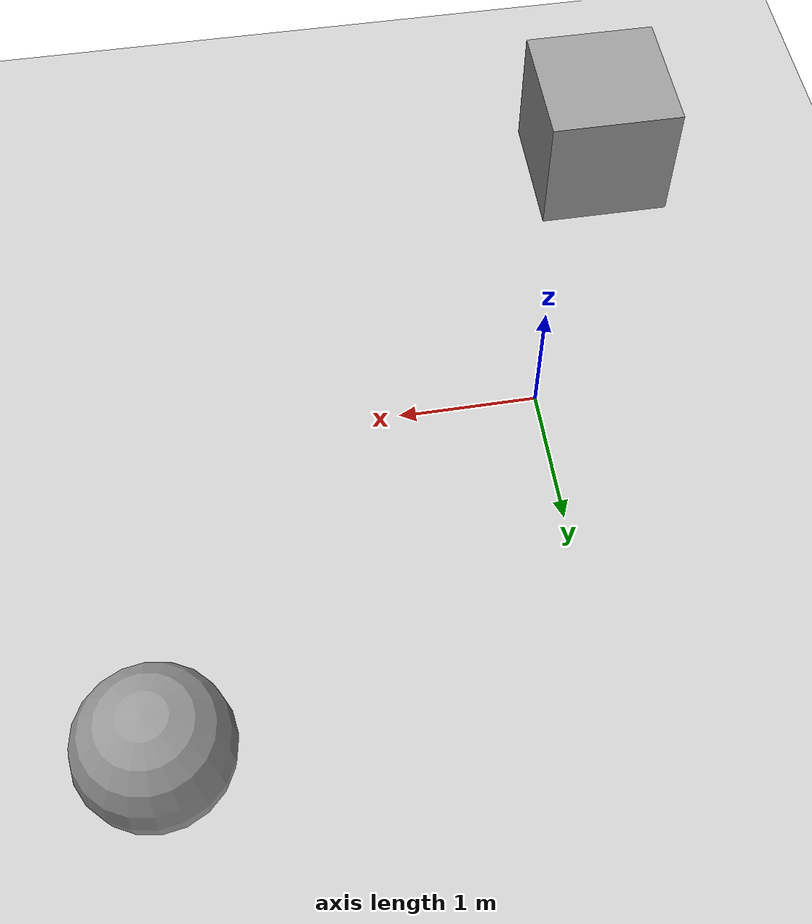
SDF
<?xml version="1.0" ?>

<sdf version="1.6">
  <world name="default">
    <include>
      <uri>model://sun</uri>
    </include>
    <include>
      <uri>model://ground_plane</uri>
    </include>
    <model name='unit_box'>
      <pose>-0.90519 -2.16527 0.5 0 -0 0</pose>
      <link name='link'>
        <inertial>
          <mass>1</mass>
          <inertia>
            <ixx>0.166667</ixx>
            <ixy>0</ixy>
            <ixz>0</ixz>
            <iyy>0.166667</iyy>
            <iyz>0</iyz>
            <izz>0.166667</izz>
          </inertia>
          <pose>0 0 0 0 -0 0</pose>
        </inertial>
        <collision name='collision'>
          <geometry>
            <box>
              <size>1 1 1</size>
            </box>
          </geometry>
          <max_contacts>10</max_contacts>
          <surface>
            <contact>
              <ode/>
            </contact>
            <bounce/>
            <friction>
              <torsional>
                <ode/>
              </torsional>
              <ode/>
            </friction>
          </surface>
        </collision>
        <visual name='visual'>
          <geometry>
            <box>
              <size>1 1 1</size>
            </box>
          </geometry>
          <material>
            <script>
              <name>Gazebo/Grey</name>
              <uri>file://media/materials/scripts/gazebo.material</uri>
            </script>
          </material>
        </visual>
        <self_collide>0</self_collide>
        <enable_wind>0</enable_wind>
        <kinematic>0</kinematic>
      </link>
    </model>
    <model name='unit_sphere'>
      <pose>2.82406 2.41588 0.5 0 -0 0</pose>
      <link name='link'>
        <inertial>
          <mass>1</mass>
          <inertia>
            <ixx>0.1</ixx>
            <ixy>0</ixy>
            <ixz>0</ixz>
            <iyy>0.1</iyy>
            <iyz>0</iyz>
            <izz>0.1</izz>
          </inertia>
          <pose>0 0 0 0 -0 0</pose>
        </inertial>
        <collision name='collision'>
          <geometry>
            <sphere>
              <radius>0.5</radius>
            </sphere>
          </geometry>
          <max_contacts>10</max_contacts>
          <surface>
            <contact>
              <ode/>
            </contact>
            <bounce/>
            <friction>
              <torsional>
                <ode/>
              </torsional>
              <ode/>
            </friction>
          </surface>
        </collision>
        <visual name='visual'>
          <geometry>
            <sphere>
              <radius>0.5</radius>
            </sphere>
          </geometry>
          <material>
            <script>
              <name>Gazebo/Grey</name>
              <uri>file://media/materials/scripts/gazebo.material</uri>
            </script>
          </material>
        </visual>
        <self_collide>0</self_collide>
        <enable_wind>0</enable_wind>
        <kinematic>0</kinematic>
      </link>
    </model>
  </world>
</sdf>
